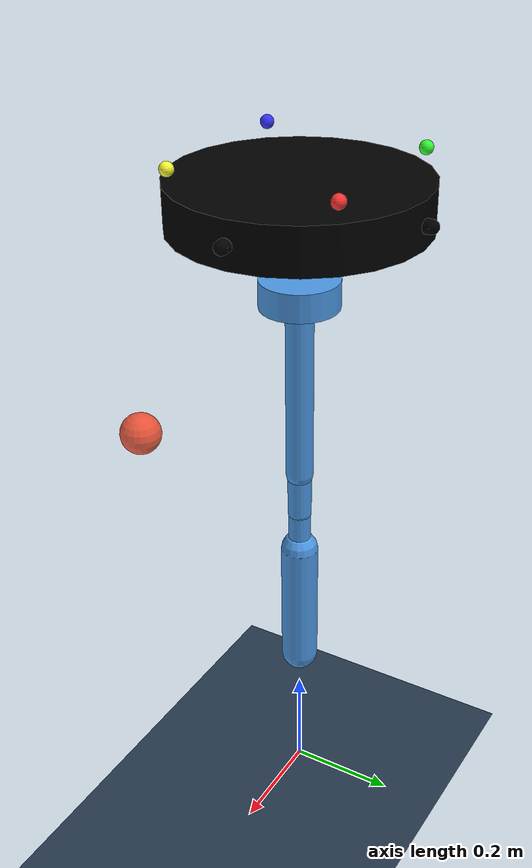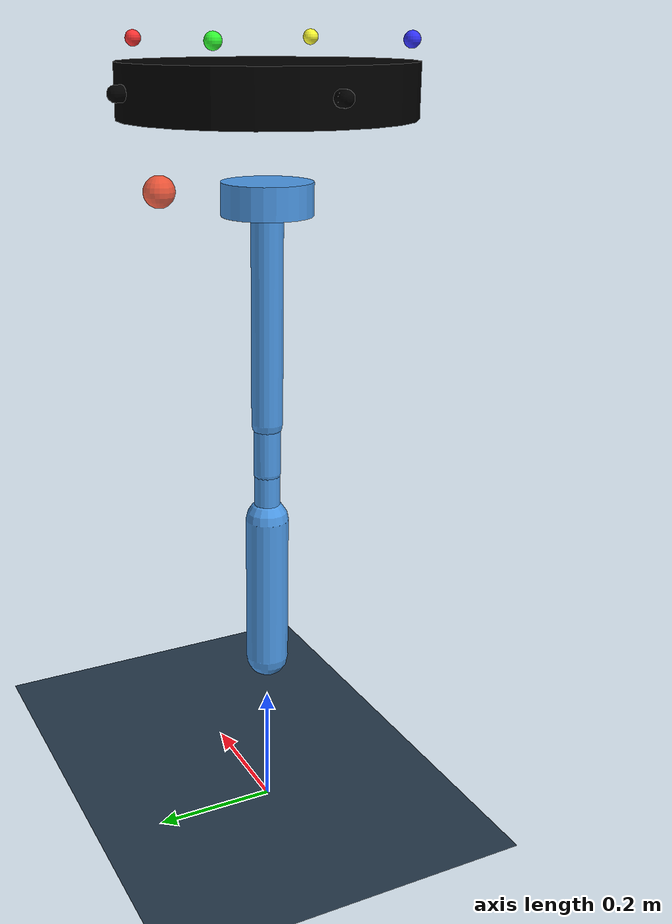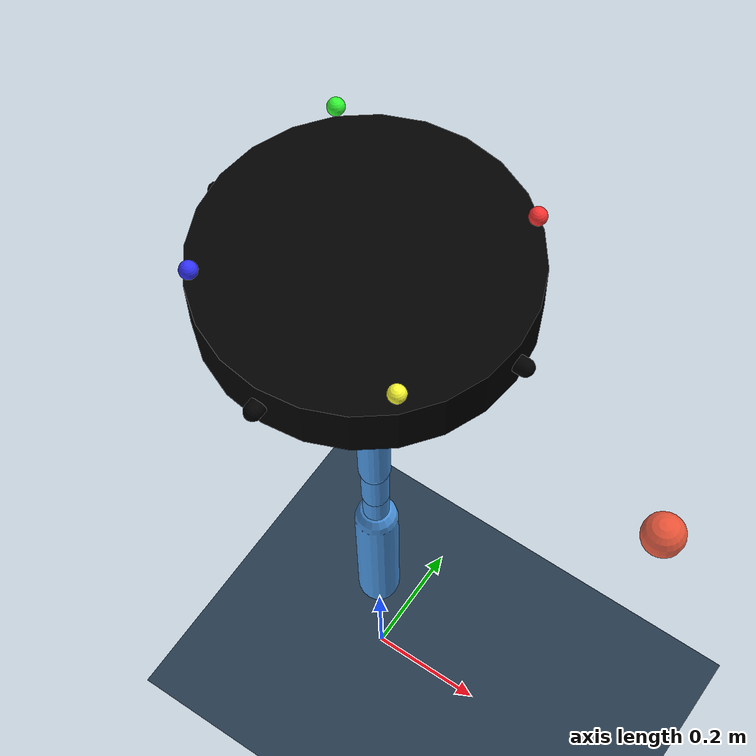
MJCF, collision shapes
<mujoco model="cone_harvest_robot">
  <compiler angle="radian" meshdir="../meshes" autolimits="true" balanceinertia="true"/>
  <option timestep="0.002" gravity="0 0 -9.81" integrator="implicitfast">
    <flag contact="enable"/>
  </option>

  <default>
    <joint damping="0.03" armature="0.002"/>
    <geom friction="0.8 0.1 0.1" condim="3"/>
    <default class="arm_visual">
      <geom type="mesh" group="2" contype="0" conaffinity="0" rgba="0.75 0.75 0.78 1"/>
    </default>
    <default class="arm_collision">
      <geom group="3" rgba="0.3 0.6 0.9 0.12"/>
    </default>
  </default>

  <asset>
    <texture type="skybox" builtin="gradient" rgb1="0.3 0.5 0.7" rgb2="0 0 0" width="512" height="3072"/>
    <texture type="2d" name="groundplane" builtin="checker" mark="edge"
             rgb1="0.2 0.3 0.4" rgb2="0.1 0.15 0.2" markrgb="0.8 0.8 0.8" width="300" height="300"/>
    <material name="groundplane" texture="groundplane" texuniform="true" texrepeat="5 5" reflectance="0.2"/>
    <mesh name="palletrone_body_mesh" file="palletrone/BODY.stl"/>
    <mesh name="palletrone_prop_mesh" file="palletrone/PROP.stl"/>
    <mesh name="arm_base_link" file="arm/base_link.STL" scale="0.001 0.001 0.001"/>
    <mesh name="arm_link1_mesh" file="arm/link1.STL" scale="0.001 0.001 0.001"/>
    <mesh name="arm_link2_mesh" file="arm/link2.STL" scale="0.001 0.001 0.001"/>
    <mesh name="arm_link3_mesh" file="arm/link3.STL" scale="0.001 0.001 0.001"/>
    <mesh name="arm_link4_mesh" file="arm/link4.STL" scale="0.001 0.001 0.001"/>
  </asset>

  <worldbody>
    <light pos="0 0 4" dir="0 0 -1" directional="true"/>
    <geom name="floor" type="plane" size="5 5 0.1" material="groundplane"/>
    <body name="base" pos="0 0 1.2">
      <include file="palletrone.xml"/>
      <body name="arm_mount" pos="0 0 -0.13">
        <include file="arm.xml"/>
      </body>
    </body>
    <body name="desired_tcp_marker" mocap="true" pos="0.45 0 1.0">
      <geom name="desired_tcp_marker_sphere" type="sphere" size="0.025" contype="0" conaffinity="0" rgba="1 0.25 0.1 0.55"/>
      <site name="desired_tcp_marker_site" size="0.03" rgba="1 0.25 0.1 0.8"/>
    </body>
  </worldbody>

  <actuator>
    <general name="rotor_0_act" site="rotor_0" gear="0 0 1 0 0 0.01" ctrlrange="0 25"/>
    <general name="rotor_1_act" site="rotor_1" gear="0 0 1 0 0 -0.01" ctrlrange="0 25"/>
    <general name="rotor_2_act" site="rotor_2" gear="0 0 1 0 0 0.01" ctrlrange="0 25"/>
    <general name="rotor_3_act" site="rotor_3" gear="0 0 1 0 0 -0.01" ctrlrange="0 25"/>
    <position name="rotor_0_tilt_act" joint="rotor_0_tilt_joint" kp="40" kv="4" ctrlrange="-0.6 0.6"/>
    <position name="rotor_1_tilt_act" joint="rotor_1_tilt_joint" kp="40" kv="4" ctrlrange="-0.6 0.6"/>
    <position name="rotor_2_tilt_act" joint="rotor_2_tilt_joint" kp="40" kv="4" ctrlrange="-0.6 0.6"/>
    <position name="rotor_3_tilt_act" joint="rotor_3_tilt_joint" kp="40" kv="4" ctrlrange="-0.6 0.6"/>
    <motor name="J1_act" joint="J1" ctrlrange="-10 10"/>
    <motor name="J2_act" joint="J2" ctrlrange="-10 10"/>
    <motor name="J3_act" joint="J3" ctrlrange="-10 10"/>
  </actuator>

  <keyframe>
    <key name="home" qpos="0 0 1.2 1 0 0 0 0 0 0 0 0 0 0" ctrl="16 16 16 16 0 0 0 0 0 0 0"/>
  </keyframe>
</mujoco>

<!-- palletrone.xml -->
<mujoco>
  <freejoint name="base_free"/>
  <inertial mass="4.43" pos="0 0 0" diaginertia="0.09 0.09 0.16"/>
  <!-- Exact CAD is visual-only; primitives keep contact stable and inexpensive. -->
  <geom name="palletrone_body_visual" type="mesh" mesh="palletrone_body_mesh"
        group="1" contype="0" conaffinity="0" rgba="0.16 0.19 0.23 1"/>
  <geom name="airframe_collision" type="cylinder" size="0.22 0.04"
        group="3" rgba="0 0 0 0"/>
  <geom name="arm_x_collision" type="capsule" fromto="-0.23 0 0 0.23 0 0"
        size="0.012" group="3" rgba="0 0 0 0"/>
  <geom name="arm_y_collision" type="capsule" fromto="0 -0.23 0 0 0.23 0"
        size="0.012" group="3" rgba="0 0 0 0"/>

  <!-- X-configuration copied from the original TPAM Palletrone model. -->
  <body name="rotor_0_tilt" pos="0.148492 0.148492 0.07"
        quat="0.9238795 0 0 0.3826834">
    <joint name="rotor_0_tilt_joint" axis="1 0 0" range="-0.6 0.6"/>
    <inertial mass="0.02" pos="0 0 0" diaginertia="0.0001 0.0001 0.0001"/>
    <geom name="rotor_0_visual" type="mesh" mesh="palletrone_prop_mesh"
          quat="0.7071068 0 0 0.7071068" group="1" contype="0" conaffinity="0"
          rgba="0.70 0.18 0.14 1"/>
    <site name="rotor_0" size="0.012" rgba="1 0.2 0.2 1"/>
  </body>
  <body name="rotor_1_tilt" pos="-0.148492 0.148492 0.07"
        quat="0.3826834 0 0 0.9238795">
    <joint name="rotor_1_tilt_joint" axis="1 0 0" range="-0.6 0.6"/>
    <inertial mass="0.02" pos="0 0 0" diaginertia="0.0001 0.0001 0.0001"/>
    <geom name="rotor_1_visual" type="mesh" mesh="palletrone_prop_mesh"
          quat="0.7071068 0 0 0.7071068" group="1" contype="0" conaffinity="0"
          rgba="0.20 0.55 0.25 1"/>
    <site name="rotor_1" size="0.012" rgba="0.2 1 0.2 1"/>
  </body>
  <body name="rotor_2_tilt" pos="-0.148492 -0.148492 0.07"
        quat="0.3826834 0 0 -0.9238795">
    <joint name="rotor_2_tilt_joint" axis="1 0 0" range="-0.6 0.6"/>
    <inertial mass="0.02" pos="0 0 0" diaginertia="0.0001 0.0001 0.0001"/>
    <geom name="rotor_2_visual" type="mesh" mesh="palletrone_prop_mesh"
          quat="0.7071068 0 0 0.7071068" group="1" contype="0" conaffinity="0"
          rgba="0.20 0.35 0.70 1"/>
    <site name="rotor_2" size="0.012" rgba="0.2 0.2 1 1"/>
  </body>
  <body name="rotor_3_tilt" pos="0.148492 -0.148492 0.07"
        quat="0.9238795 0 0 -0.3826834">
    <joint name="rotor_3_tilt_joint" axis="1 0 0" range="-0.6 0.6"/>
    <inertial mass="0.02" pos="0 0 0" diaginertia="0.0001 0.0001 0.0001"/>
    <geom name="rotor_3_visual" type="mesh" mesh="palletrone_prop_mesh"
          quat="0.7071068 0 0 0.7071068" group="1" contype="0" conaffinity="0"
          rgba="0.70 0.62 0.18 1"/>
    <site name="rotor_3" size="0.012" rgba="1 1 0.2 1"/>
  </body>
</mujoco>

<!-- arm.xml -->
<mujoco>
  <body name="arm_base_link" quat="0 1 0 0">
    <inertial pos="-0.01024 0 0.02917" mass="0.205"
              fullinertia="0.00027 0.00033 0.00013 0 0.00006 0"/>
    <geom class="arm_visual" mesh="arm_base_link"/>
    <geom class="arm_collision" type="cylinder" size="0.07 0.025" pos="0 0 0.025"/>

    <body name="arm_link1" pos="0 0 0.04475" quat="0.4999981634 -0.5 -0.5 -0.5000018366">
      <joint name="J1" type="hinge" axis="0 0 1" range="0 1.5708"/>
      <inertial pos="0.23315 0 0.0003" mass="0.394"
                fullinertia="0.00011 0.02625 0.02621 0 -0.00004 0"/>
      <geom class="arm_visual" mesh="arm_link1_mesh"/>
      <geom class="arm_collision" type="capsule" fromto="0 0 0 0.333 0 0" size="0.025"/>

      <body name="arm_link2" pos="0.333 0 0">
        <joint name="J2" type="hinge" axis="0 0 1" range="-1.5708 1.5708"/>
        <inertial pos="0.06362 0.00046 0" mass="0.205"
                  fullinertia="0.00006 0.00095 0.00096 -0.00001 0 0"/>
        <geom class="arm_visual" mesh="arm_link2_mesh"/>
        <geom class="arm_collision" type="capsule" fromto="0 0 0 0.0835 0 0" size="0.022"/>

        <body name="arm_link3" pos="0.0835 0 0" quat="0.7071054825 -0.7071080799 0 0">
          <joint name="J3" type="hinge" axis="0 0 1" range="-1.5708 1.5708"/>
          <inertial pos="0.06268 0.01244 0" mass="0.304"
                    fullinertia="0.00017 0.00142 0.00151 -0.00022 0 0"/>
          <geom class="arm_visual" mesh="arm_link3_mesh"/>
          <geom class="arm_collision" type="capsule" fromto="0 0 0 0.081 0 0" size="0.021"/>

          <body name="arm_link4" pos="0.081 0 0" quat="0.4999981634 -0.5 0.5000018366 -0.5">
            <inertial pos="-0.00062 -0.04272 0.11889" mass="0.856"
                      fullinertia="0.02161 0.01623 0.00887 0 0.00003 0.00284"/>
            <geom class="arm_visual" mesh="arm_link4_mesh"/>
            <geom class="arm_collision" type="capsule" fromto="0 0 0 0 0 0.25" size="0.035"/>
            <site name="tcp" pos="0 0 0.25" size="0.015" rgba="1 0.1 0.1 1"/>
          </body>
        </body>
      </body>
    </body>
  </body>
</mujoco>
